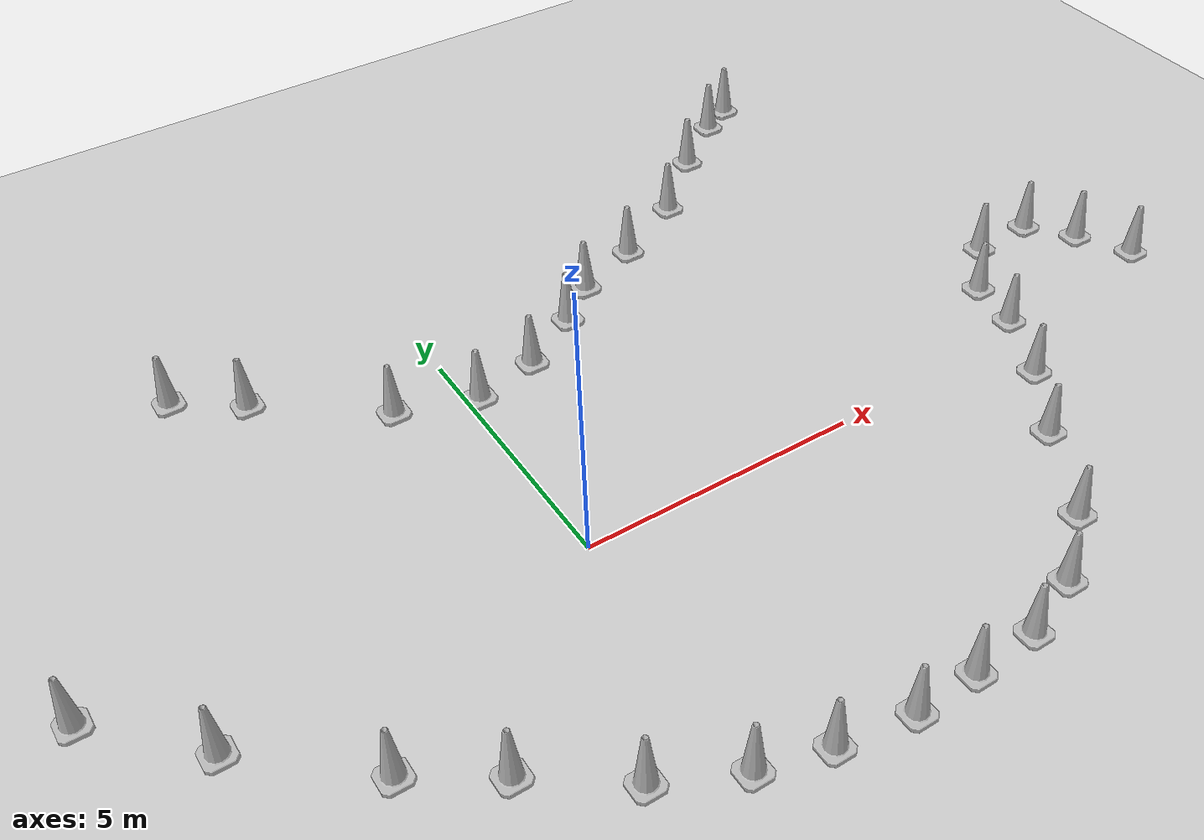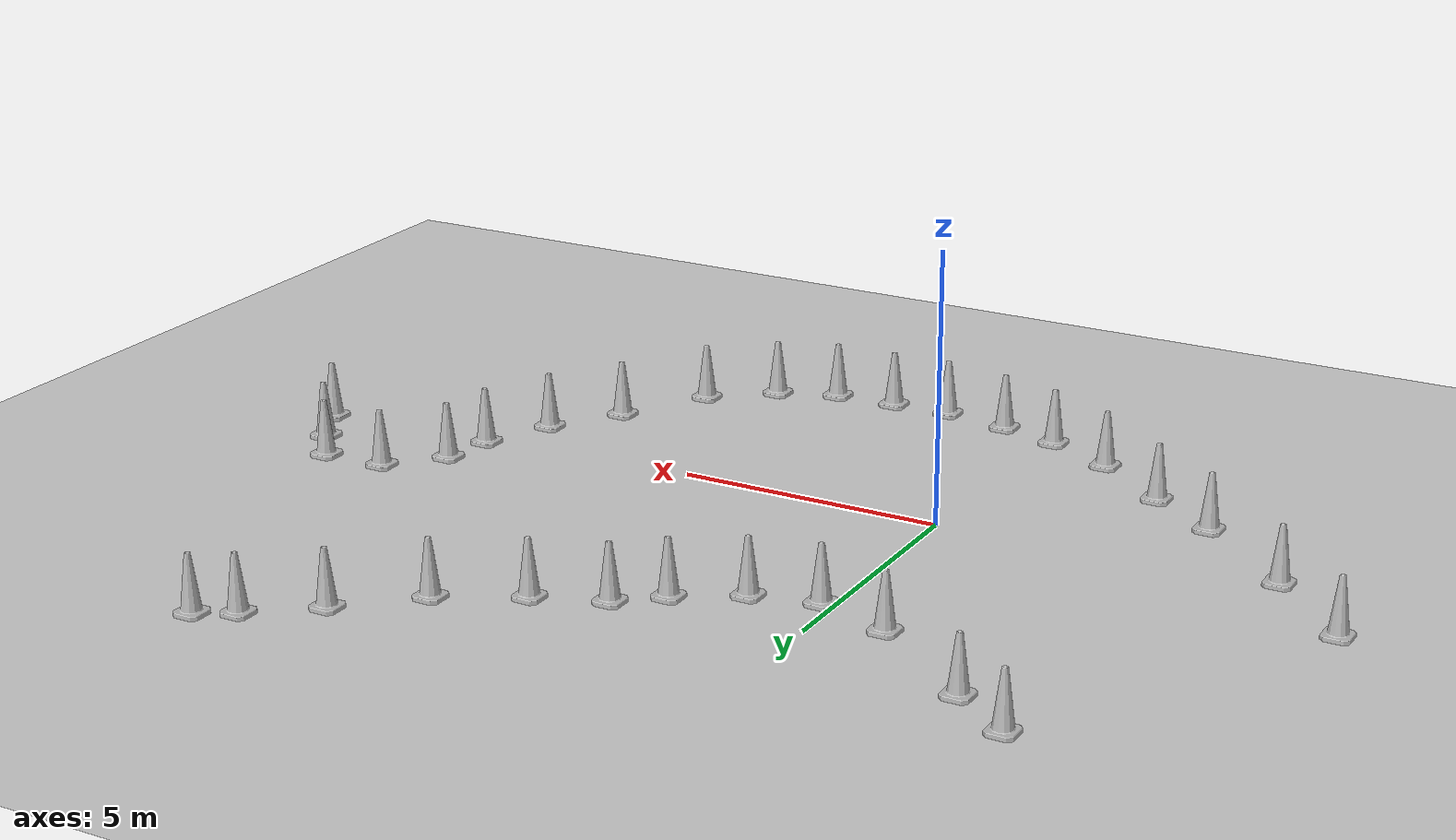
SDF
<sdf version="1.7">
 <world name="default">
  <light name="sun" type="directional">
   <pose>0 0 10 0 -0 0</pose>
   <diffuse>0.8 0.8 0.8 1</diffuse>
   <specular>0.2 0.2 0.2 1</specular>
   <attenuation>
    <range>1000</range>
    <constant>0.9</constant>
    <linear>0.01</linear>
    <quadratic>0.001</quadratic>
   </attenuation>
   <direction>-0.5 0.1 -0.9</direction>
   <spot><inner_angle>0</inner_angle><outer_angle>0</outer_angle><falloff>0</falloff></spot>
  </light>
  <model name="ground_plane">
   <static>1</static>
   <link name="link">
    <collision name="collision">
     <geometry><plane><normal>0 0 1</normal><size>100 100</size></plane></geometry>
     <surface>
      <contact><collide_bitmask>65535</collide_bitmask></contact>
      <friction><ode><mu>100</mu><mu2>50</mu2></ode></friction>
     </surface>
    </collision>
    <visual name="visual">
     <cast_shadows>0</cast_shadows>
     <geometry><plane><normal>0 0 1</normal><size>100 100</size></plane></geometry>
     <material>
      <script><uri>file://media/materials/scripts/gazebo.material</uri><name>Gazebo/Grey</name></script>
     </material>
    </visual>
   </link>
  </model>
  <gravity>0 0 -9.8</gravity>
  <magnetic_field>6e-06 2.3e-05 -4.2e-05</magnetic_field>
  <atmosphere type="adiabatic"/>
  <physics type="ode">
   <max_step_size>0.001</max_step_size>
   <real_time_factor>1</real_time_factor>
   <real_time_update_rate>1000</real_time_update_rate>
  </physics>
  <scene><ambient>0.4 0.4 0.4 1</ambient><background>0.7 0.7 0.7 1</background><shadows>1</shadows></scene>
  <audio><device>default</device></audio>
  <spherical_coordinates>
   <surface_model>EARTH_WGS84</surface_model>
   <latitude_deg>0</latitude_deg>
   <longitude_deg>0</longitude_deg>
   <elevation>0</elevation>
   <heading_deg>0</heading_deg>
  </spherical_coordinates>
  <model name="Construction Cone">
   <link name="link">
    <collision name="collision">
     <geometry>
      <mesh><scale>10 10 10</scale><uri>model://construction_cone/meshes/construction_cone.dae</uri></mesh>
     </geometry>
    </collision>
    <visual name="visual">
     <geometry>
      <mesh><scale>10 10 10</scale><uri>model://construction_cone/meshes/construction_cone.dae</uri></mesh>
     </geometry>
    </visual>
    <inertial>
     <inertia><ixx>1</ixx><ixy>0</ixy><ixz>0</ixz><iyy>1</iyy><iyz>0</iyz><izz>1</izz></inertia>
     <mass>1</mass>
    </inertial>
   </link>
   <pose>-4.23876 6.72759 -0 0 -1e-06 0</pose>
  </model>
  <model name="Construction Cone_0">
   <link name="link">
    <collision name="collision">
     <geometry>
      <mesh><scale>10 10 10</scale><uri>model://construction_cone/meshes/construction_cone.dae</uri></mesh>
     </geometry>
    </collision>
    <visual name="visual">
     <geometry>
      <mesh><scale>10 10 10</scale><uri>model://construction_cone/meshes/construction_cone.dae</uri></mesh>
     </geometry>
    </visual>
    <inertial>
     <inertia><ixx>1</ixx><ixy>0</ixy><ixz>0</ixz><iyy>1</iyy><iyz>0</iyz><izz>1</izz></inertia>
     <mass>1</mass>
    </inertial>
   </link>
   <pose>-3.1493 5.93624 -0 0 -0 0</pose>
  </model>
  <model name="Construction Cone_1">
   <link name="link">
    <collision name="collision">
     <geometry>
      <mesh><scale>10 10 10</scale><uri>model://construction_cone/meshes/construction_cone.dae</uri></mesh>
     </geometry>
    </collision>
    <visual name="visual">
     <geometry>
      <mesh><scale>10 10 10</scale><uri>model://construction_cone/meshes/construction_cone.dae</uri></mesh>
     </geometry>
    </visual>
    <inertial>
     <inertia><ixx>1</ixx><ixy>0</ixy><ixz>0</ixz><iyy>1</iyy><iyz>0</iyz><izz>1</izz></inertia>
     <mass>1</mass>
    </inertial>
   </link>
   <pose>-1.15917 4.39636 -8e-06 1e-06 -0 0</pose>
  </model>
  <model name="Construction Cone_2">
   <link name="link">
    <collision name="collision">
     <geometry>
      <mesh><scale>10 10 10</scale><uri>model://construction_cone/meshes/construction_cone.dae</uri></mesh>
     </geometry>
    </collision>
    <visual name="visual">
     <geometry>
      <mesh><scale>10 10 10</scale><uri>model://construction_cone/meshes/construction_cone.dae</uri></mesh>
     </geometry>
    </visual>
    <inertial>
     <inertia><ixx>1</ixx><ixy>0</ixy><ixz>0</ixz><iyy>1</iyy><iyz>0</iyz><izz>1</izz></inertia>
     <mass>1</mass>
    </inertial>
   </link>
   <pose>0.228253 3.92398 -0 0 -0 0</pose>
  </model>
  <model name="Construction Cone_3">
   <link name="link">
    <collision name="collision">
     <geometry>
      <mesh><scale>10 10 10</scale><uri>model://construction_cone/meshes/construction_cone.dae</uri></mesh>
     </geometry>
    </collision>
    <visual name="visual">
     <geometry>
      <mesh><scale>10 10 10</scale><uri>model://construction_cone/meshes/construction_cone.dae</uri></mesh>
     </geometry>
    </visual>
    <inertial>
     <inertia><ixx>1</ixx><ixy>0</ixy><ixz>0</ixz><iyy>1</iyy><iyz>0</iyz><izz>1</izz></inertia>
     <mass>1</mass>
    </inertial>
   </link>
   <pose>1.41805 4.22455 -0 0 -0 0</pose>
  </model>
  <model name="Construction Cone_4">
   <link name="link">
    <collision name="collision">
     <geometry>
      <mesh><scale>10 10 10</scale><uri>model://construction_cone/meshes/construction_cone.dae</uri></mesh>
     </geometry>
    </collision>
    <visual name="visual">
     <geometry>
      <mesh><scale>10 10 10</scale><uri>model://construction_cone/meshes/construction_cone.dae</uri></mesh>
     </geometry>
    </visual>
    <inertial>
     <inertia><ixx>1</ixx><ixy>0</ixy><ixz>0</ixz><iyy>1</iyy><iyz>0</iyz><izz>1</izz></inertia>
     <mass>1</mass>
    </inertial>
   </link>
   <pose>2.54221 4.89168 -0 0 -1e-06 0</pose>
  </model>
  <model name="Construction Cone_5">
   <link name="link">
    <collision name="collision">
     <geometry>
      <mesh><scale>10 10 10</scale><uri>model://construction_cone/meshes/construction_cone.dae</uri></mesh>
     </geometry>
    </collision>
    <visual name="visual">
     <geometry>
      <mesh><scale>10 10 10</scale><uri>model://construction_cone/meshes/construction_cone.dae</uri></mesh>
     </geometry>
    </visual>
    <inertial>
     <inertia><ixx>1</ixx><ixy>0</ixy><ixz>0</ixz><iyy>1</iyy><iyz>0</iyz><izz>1</izz></inertia>
     <mass>1</mass>
    </inertial>
   </link>
   <pose>3.28817 5.51309 -0 0 -0 0</pose>
  </model>
  <model name="Construction Cone_6">
   <link name="link">
    <collision name="collision">
     <geometry>
      <mesh><scale>10 10 10</scale><uri>model://construction_cone/meshes/construction_cone.dae</uri></mesh>
     </geometry>
    </collision>
    <visual name="visual">
     <geometry>
      <mesh><scale>10 10 10</scale><uri>model://construction_cone/meshes/construction_cone.dae</uri></mesh>
     </geometry>
    </visual>
    <inertial>
     <inertia><ixx>1</ixx><ixy>0</ixy><ixz>0</ixz><iyy>1</iyy><iyz>0</iyz><izz>1</izz></inertia>
     <mass>1</mass>
    </inertial>
   </link>
   <pose>4.5378 5.99729 -1e-05 -1e-06 0 0</pose>
  </model>
  <model name="Construction Cone_7">
   <link name="link">
    <collision name="collision">
     <geometry>
      <mesh><scale>10 10 10</scale><uri>model://construction_cone/meshes/construction_cone.dae</uri></mesh>
     </geometry>
    </collision>
    <visual name="visual">
     <geometry>
      <mesh><scale>10 10 10</scale><uri>model://construction_cone/meshes/construction_cone.dae</uri></mesh>
     </geometry>
    </visual>
    <inertial>
     <inertia><ixx>1</ixx><ixy>0</ixy><ixz>0</ixz><iyy>1</iyy><iyz>0</iyz><izz>1</izz></inertia>
     <mass>1</mass>
    </inertial>
   </link>
   <pose>5.96756 6.76843 -0 -0 -0 -0</pose>
  </model>
  <model name="Construction Cone_8">
   <link name="link">
    <collision name="collision">
     <geometry>
      <mesh><scale>10 10 10</scale><uri>model://construction_cone/meshes/construction_cone.dae</uri></mesh>
     </geometry>
    </collision>
    <visual name="visual">
     <geometry>
      <mesh><scale>10 10 10</scale><uri>model://construction_cone/meshes/construction_cone.dae</uri></mesh>
     </geometry>
    </visual>
    <inertial>
     <inertia><ixx>1</ixx><ixy>0</ixy><ixz>0</ixz><iyy>1</iyy><iyz>0</iyz><izz>1</izz></inertia>
     <mass>1</mass>
    </inertial>
   </link>
   <pose>-7.56613 1.14178 -0 0 -1e-06 0</pose>
  </model>
  <model name="Construction Cone_9">
   <link name="link">
    <collision name="collision">
     <geometry>
      <mesh><scale>10 10 10</scale><uri>model://construction_cone/meshes/construction_cone.dae</uri></mesh>
     </geometry>
    </collision>
    <visual name="visual">
     <geometry>
      <mesh><scale>10 10 10</scale><uri>model://construction_cone/meshes/construction_cone.dae</uri></mesh>
     </geometry>
    </visual>
    <inertial>
     <inertia><ixx>1</ixx><ixy>0</ixy><ixz>0</ixz><iyy>1</iyy><iyz>0</iyz><izz>1</izz></inertia>
     <mass>1</mass>
    </inertial>
   </link>
   <pose>-6.08263 -0.406068 -0 0 -1e-06 0</pose>
  </model>
  <model name="Construction Cone_10">
   <link name="link">
    <collision name="collision">
     <geometry>
      <mesh><scale>10 10 10</scale><uri>model://construction_cone/meshes/construction_cone.dae</uri></mesh>
     </geometry>
    </collision>
    <visual name="visual">
     <geometry>
      <mesh><scale>10 10 10</scale><uri>model://construction_cone/meshes/construction_cone.dae</uri></mesh>
     </geometry>
    </visual>
    <inertial>
     <inertia><ixx>1</ixx><ixy>0</ixy><ixz>0</ixz><iyy>1</iyy><iyz>0</iyz><izz>1</izz></inertia>
     <mass>1</mass>
    </inertial>
   </link>
   <pose>-4.26776 -2.04347 -0 0 -0 0</pose>
  </model>
  <model name="Construction Cone_11">
   <link name="link">
    <collision name="collision">
     <geometry>
      <mesh><scale>10 10 10</scale><uri>model://construction_cone/meshes/construction_cone.dae</uri></mesh>
     </geometry>
    </collision>
    <visual name="visual">
     <geometry>
      <mesh><scale>10 10 10</scale><uri>model://construction_cone/meshes/construction_cone.dae</uri></mesh>
     </geometry>
    </visual>
    <inertial>
     <inertia><ixx>1</ixx><ixy>0</ixy><ixz>0</ixz><iyy>1</iyy><iyz>0</iyz><izz>1</izz></inertia>
     <mass>1</mass>
    </inertial>
   </link>
   <pose>-2.97087 -2.92571 -0 0 -1e-06 0</pose>
  </model>
  <model name="Construction Cone_12">
   <link name="link">
    <collision name="collision">
     <geometry>
      <mesh><scale>10 10 10</scale><uri>model://construction_cone/meshes/construction_cone.dae</uri></mesh>
     </geometry>
    </collision>
    <visual name="visual">
     <geometry>
      <mesh><scale>10 10 10</scale><uri>model://construction_cone/meshes/construction_cone.dae</uri></mesh>
     </geometry>
    </visual>
    <inertial>
     <inertia><ixx>1</ixx><ixy>0</ixy><ixz>0</ixz><iyy>1</iyy><iyz>0</iyz><izz>1</izz></inertia>
     <mass>1</mass>
    </inertial>
   </link>
   <pose>-1.55193 -4.01288 -0 0 -0 0</pose>
  </model>
  <model name="Construction Cone_13">
   <link name="link">
    <collision name="collision">
     <geometry>
      <mesh><scale>10 10 10</scale><uri>model://construction_cone/meshes/construction_cone.dae</uri></mesh>
     </geometry>
    </collision>
    <visual name="visual">
     <geometry>
      <mesh><scale>10 10 10</scale><uri>model://construction_cone/meshes/construction_cone.dae</uri></mesh>
     </geometry>
    </visual>
    <inertial>
     <inertia><ixx>1</ixx><ixy>0</ixy><ixz>0</ixz><iyy>1</iyy><iyz>0</iyz><izz>1</izz></inertia>
     <mass>1</mass>
    </inertial>
   </link>
   <pose>-0.259976 -4.64739 -0 0 -0 0</pose>
  </model>
  <model name="Construction Cone_14">
   <link name="link">
    <collision name="collision">
     <geometry>
      <mesh><scale>10 10 10</scale><uri>model://construction_cone/meshes/construction_cone.dae</uri></mesh>
     </geometry>
    </collision>
    <visual name="visual">
     <geometry>
      <mesh><scale>10 10 10</scale><uri>model://construction_cone/meshes/construction_cone.dae</uri></mesh>
     </geometry>
    </visual>
    <inertial>
     <inertia><ixx>1</ixx><ixy>0</ixy><ixz>0</ixz><iyy>1</iyy><iyz>0</iyz><izz>1</izz></inertia>
     <mass>1</mass>
    </inertial>
   </link>
   <pose>0.883731 -4.95296 -0 0 -0 0</pose>
  </model>
  <model name="Construction Cone_15">
   <link name="link">
    <collision name="collision">
     <geometry>
      <mesh><scale>10 10 10</scale><uri>model://construction_cone/meshes/construction_cone.dae</uri></mesh>
     </geometry>
    </collision>
    <visual name="visual">
     <geometry>
      <mesh><scale>10 10 10</scale><uri>model://construction_cone/meshes/construction_cone.dae</uri></mesh>
     </geometry>
    </visual>
    <inertial>
     <inertia><ixx>1</ixx><ixy>0</ixy><ixz>0</ixz><iyy>1</iyy><iyz>0</iyz><izz>1</izz></inertia>
     <mass>1</mass>
    </inertial>
   </link>
   <pose>2.16542 -5.15489 -0 1e-06 -0 0</pose>
  </model>
  <model name="Construction Cone_16">
   <link name="link">
    <collision name="collision">
     <geometry>
      <mesh><scale>10 10 10</scale><uri>model://construction_cone/meshes/construction_cone.dae</uri></mesh>
     </geometry>
    </collision>
    <visual name="visual">
     <geometry>
      <mesh><scale>10 10 10</scale><uri>model://construction_cone/meshes/construction_cone.dae</uri></mesh>
     </geometry>
    </visual>
    <inertial>
     <inertia><ixx>1</ixx><ixy>0</ixy><ixz>0</ixz><iyy>1</iyy><iyz>0</iyz><izz>1</izz></inertia>
     <mass>1</mass>
    </inertial>
   </link>
   <pose>3.30204 -5.11079 -0 0 -0 0</pose>
  </model>
  <model name="Construction Cone_17">
   <link name="link">
    <collision name="collision">
     <geometry>
      <mesh><scale>10 10 10</scale><uri>model://construction_cone/meshes/construction_cone.dae</uri></mesh>
     </geometry>
    </collision>
    <visual name="visual">
     <geometry>
      <mesh><scale>10 10 10</scale><uri>model://construction_cone/meshes/construction_cone.dae</uri></mesh>
     </geometry>
    </visual>
    <inertial>
     <inertia><ixx>1</ixx><ixy>0</ixy><ixz>0</ixz><iyy>1</iyy><iyz>0</iyz><izz>1</izz></inertia>
     <mass>1</mass>
    </inertial>
   </link>
   <pose>4.49377 -5.03699 -0 0 -0 0</pose>
  </model>
  <model name="Construction Cone_18">
   <link name="link">
    <collision name="collision">
     <geometry>
      <mesh><scale>10 10 10</scale><uri>model://construction_cone/meshes/construction_cone.dae</uri></mesh>
     </geometry>
    </collision>
    <visual name="visual">
     <geometry>
      <mesh><scale>10 10 10</scale><uri>model://construction_cone/meshes/construction_cone.dae</uri></mesh>
     </geometry>
    </visual>
    <inertial>
     <inertia><ixx>1</ixx><ixy>0</ixy><ixz>0</ixz><iyy>1</iyy><iyz>0</iyz><izz>1</izz></inertia>
     <mass>1</mass>
    </inertial>
   </link>
   <pose>5.60581 -4.604 -0 0 -0 0</pose>
  </model>
  <model name="Construction Cone_19">
   <link name="link">
    <collision name="collision">
     <geometry>
      <mesh><scale>10 10 10</scale><uri>model://construction_cone/meshes/construction_cone.dae</uri></mesh>
     </geometry>
    </collision>
    <visual name="visual">
     <geometry>
      <mesh><scale>10 10 10</scale><uri>model://construction_cone/meshes/construction_cone.dae</uri></mesh>
     </geometry>
    </visual>
    <inertial>
     <inertia><ixx>1</ixx><ixy>0</ixy><ixz>0</ixz><iyy>1</iyy><iyz>0</iyz><izz>1</izz></inertia>
     <mass>1</mass>
    </inertial>
   </link>
   <pose>6.71485 -3.71845 -0 0 -1e-06 0</pose>
  </model>
  <model name="Construction Cone_20">
   <link name="link">
    <collision name="collision">
     <geometry>
      <mesh><scale>10 10 10</scale><uri>model://construction_cone/meshes/construction_cone.dae</uri></mesh>
     </geometry>
    </collision>
    <visual name="visual">
     <geometry>
      <mesh><scale>10 10 10</scale><uri>model://construction_cone/meshes/construction_cone.dae</uri></mesh>
     </geometry>
    </visual>
    <inertial>
     <inertia><ixx>1</ixx><ixy>0</ixy><ixz>0</ixz><iyy>1</iyy><iyz>0</iyz><izz>1</izz></inertia>
     <mass>1</mass>
    </inertial>
   </link>
   <pose>7.67286 -2.10561 -0 0 -1e-06 0</pose>
  </model>
  <model name="Construction Cone_21">
   <link name="link">
    <collision name="collision">
     <geometry>
      <mesh><scale>10 10 10</scale><uri>model://construction_cone/meshes/construction_cone.dae</uri></mesh>
     </geometry>
    </collision>
    <visual name="visual">
     <geometry>
      <mesh><scale>10 10 10</scale><uri>model://construction_cone/meshes/construction_cone.dae</uri></mesh>
     </geometry>
    </visual>
    <inertial>
     <inertia><ixx>1</ixx><ixy>0</ixy><ixz>0</ixz><iyy>1</iyy><iyz>0</iyz><izz>1</izz></inertia>
     <mass>1</mass>
    </inertial>
   </link>
   <pose>8.54851 -0.866013 -0 0 -1e-06 0</pose>
  </model>
  <model name="Construction Cone_22">
   <link name="link">
    <collision name="collision">
     <geometry>
      <mesh><scale>10 10 10</scale><uri>model://construction_cone/meshes/construction_cone.dae</uri></mesh>
     </geometry>
    </collision>
    <visual name="visual">
     <geometry>
      <mesh><scale>10 10 10</scale><uri>model://construction_cone/meshes/construction_cone.dae</uri></mesh>
     </geometry>
    </visual>
    <inertial>
     <inertia><ixx>1</ixx><ixy>0</ixy><ixz>0</ixz><iyy>1</iyy><iyz>0</iyz><izz>1</izz></inertia>
     <mass>1</mass>
    </inertial>
   </link>
   <pose>9.15225 0.401674 -0 0 -0 0</pose>
  </model>
  <model name="Construction Cone_23">
   <link name="link">
    <collision name="collision">
     <geometry>
      <mesh><scale>10 10 10</scale><uri>model://construction_cone/meshes/construction_cone.dae</uri></mesh>
     </geometry>
    </collision>
    <visual name="visual">
     <geometry>
      <mesh><scale>10 10 10</scale><uri>model://construction_cone/meshes/construction_cone.dae</uri></mesh>
     </geometry>
    </visual>
    <inertial>
     <inertia><ixx>1</ixx><ixy>0</ixy><ixz>0</ixz><iyy>1</iyy><iyz>0</iyz><izz>1</izz></inertia>
     <mass>1</mass>
    </inertial>
   </link>
   <pose>9.32845 1.40121 -0 0 -1e-06 0</pose>
  </model>
  <model name="Construction Cone_24">
   <link name="link">
    <collision name="collision">
     <geometry>
      <mesh><scale>10 10 10</scale><uri>model://construction_cone/meshes/construction_cone.dae</uri></mesh>
     </geometry>
    </collision>
    <visual name="visual">
     <geometry>
      <mesh><scale>10 10 10</scale><uri>model://construction_cone/meshes/construction_cone.dae</uri></mesh>
     </geometry>
    </visual>
    <inertial>
     <inertia><ixx>1</ixx><ixy>0</ixy><ixz>0</ixz><iyy>1</iyy><iyz>0</iyz><izz>1</izz></inertia>
     <mass>1</mass>
    </inertial>
   </link>
   <pose>10.187 2.30774 -0 0 -0 0</pose>
  </model>
  <model name="Construction Cone_25">
   <link name="link">
    <collision name="collision">
     <geometry>
      <mesh><scale>10 10 10</scale><uri>model://construction_cone/meshes/construction_cone.dae</uri></mesh>
     </geometry>
    </collision>
    <visual name="visual">
     <geometry>
      <mesh><scale>10 10 10</scale><uri>model://construction_cone/meshes/construction_cone.dae</uri></mesh>
     </geometry>
    </visual>
    <inertial>
     <inertia><ixx>1</ixx><ixy>0</ixy><ixz>0</ixz><iyy>1</iyy><iyz>0</iyz><izz>1</izz></inertia>
     <mass>1</mass>
    </inertial>
   </link>
   <pose>11.4029 2.36901 -8e-06 0 1e-06 0</pose>
  </model>
  <model name="Construction Cone_26">
   <link name="link">
    <collision name="collision">
     <geometry>
      <mesh><scale>10 10 10</scale><uri>model://construction_cone/meshes/construction_cone.dae</uri></mesh>
     </geometry>
    </collision>
    <visual name="visual">
     <geometry>
      <mesh><scale>10 10 10</scale><uri>model://construction_cone/meshes/construction_cone.dae</uri></mesh>
     </geometry>
    </visual>
    <inertial>
     <inertia><ixx>1</ixx><ixy>0</ixy><ixz>0</ixz><iyy>1</iyy><iyz>0</iyz><izz>1</izz></inertia>
     <mass>1</mass>
    </inertial>
   </link>
   <pose>12.0104 1.57833 -1e-05 0 -0 0</pose>
  </model>
  <model name="Construction Cone_27">
   <link name="link">
    <collision name="collision">
     <geometry>
      <mesh><scale>10 10 10</scale><uri>model://construction_cone/meshes/construction_cone.dae</uri></mesh>
     </geometry>
    </collision>
    <visual name="visual">
     <geometry>
      <mesh><scale>10 10 10</scale><uri>model://construction_cone/meshes/construction_cone.dae</uri></mesh>
     </geometry>
    </visual>
    <inertial>
     <inertia><ixx>1</ixx><ixy>0</ixy><ixz>0</ixz><iyy>1</iyy><iyz>0</iyz><izz>1</izz></inertia>
     <mass>1</mass>
    </inertial>
   </link>
   <pose>12.5306 0.621977 -0 1e-06 -0 0</pose>
  </model>
  <model name="Construction Cone_28">
   <link name="link">
    <collision name="collision">
     <geometry>
      <mesh><scale>10 10 10</scale><uri>model://construction_cone/meshes/construction_cone.dae</uri></mesh>
     </geometry>
    </collision>
    <visual name="visual">
     <geometry>
      <mesh><scale>10 10 10</scale><uri>model://construction_cone/meshes/construction_cone.dae</uri></mesh>
     </geometry>
    </visual>
    <inertial>
     <inertia><ixx>1</ixx><ixy>0</ixy><ixz>0</ixz><iyy>1</iyy><iyz>0</iyz><izz>1</izz></inertia>
     <mass>1</mass>
    </inertial>
   </link>
   <pose>7.20404 7.9098 -8e-06 0 1e-06 0</pose>
  </model>
  <model name="Construction Cone_29">
   <link name="link">
    <collision name="collision">
     <geometry>
      <mesh><scale>10 10 10</scale><uri>model://construction_cone/meshes/construction_cone.dae</uri></mesh>
     </geometry>
    </collision>
    <visual name="visual">
     <geometry>
      <mesh><scale>10 10 10</scale><uri>model://construction_cone/meshes/construction_cone.dae</uri></mesh>
     </geometry>
    </visual>
    <inertial>
     <inertia><ixx>1</ixx><ixy>0</ixy><ixz>0</ixz><iyy>1</iyy><iyz>0</iyz><izz>1</izz></inertia>
     <mass>1</mass>
    </inertial>
   </link>
   <pose>8.33242 8.77354 -0 0 -0 0</pose>
  </model>
  <model name="Construction Cone_30">
   <link name="link">
    <collision name="collision">
     <geometry>
      <mesh><scale>10 10 10</scale><uri>model://construction_cone/meshes/construction_cone.dae</uri></mesh>
     </geometry>
    </collision>
    <visual name="visual">
     <geometry>
      <mesh><scale>10 10 10</scale><uri>model://construction_cone/meshes/construction_cone.dae</uri></mesh>
     </geometry>
    </visual>
    <inertial>
     <inertia><ixx>1</ixx><ixy>0</ixy><ixz>0</ixz><iyy>1</iyy><iyz>0</iyz><izz>1</izz></inertia>
     <mass>1</mass>
    </inertial>
   </link>
   <pose>8.98969 9.13998 -0 0 -0 0</pose>
  </model>
 </world>
</sdf>
